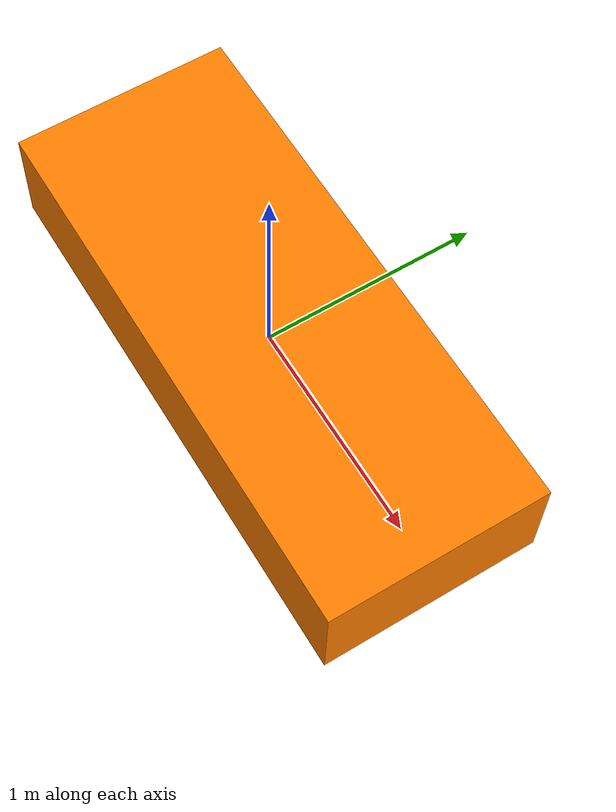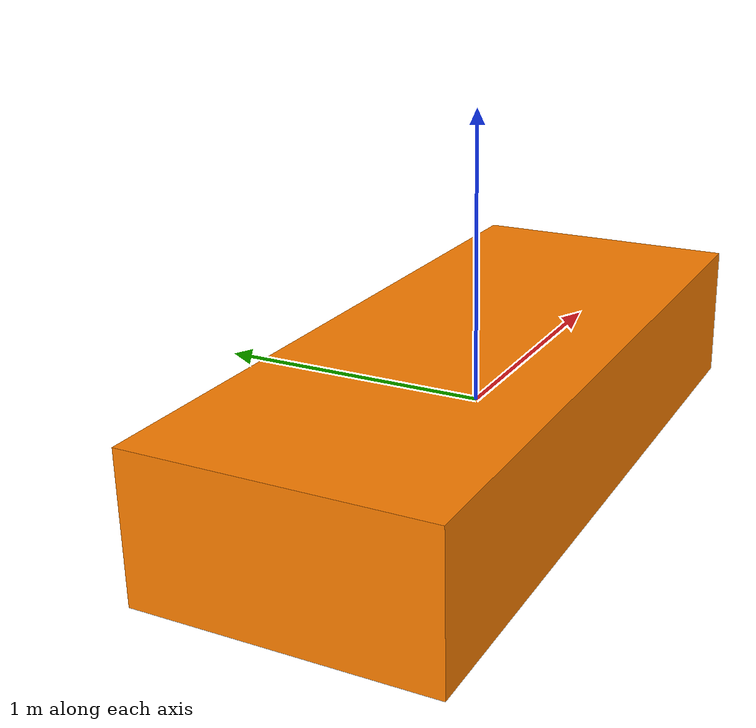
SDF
<?xml version="1.0" ?>
<sdf version="1.6">
  <model name="barrage_buoy">
    <plugin
        filename="gz-waves1-hydrodynamics-system"
        name="gz::sim::systems::Hydrodynamics">
    </plugin>
    <link name="base_link">
      <visual name="visual">
        <geometry>
          <box>
            <size>2.5 1 0.5</size>
          </box>
        </geometry>
        <material>
          <ambient>1.0 0.5 0.0 1.0</ambient>
          <diffuse>1.0 0.5 0.0 1.0</diffuse>
          <specular>0.8 0.8 0.8 1.0</specular>
        </material>
      </visual>
      <collision name="collision">
        <geometry>
          <box>
            <size>2.5 1 0.5</size>
          </box>
        </geometry>
      </collision>
      <inertial>
        <mass>312.5</mass>
        <inertia>
          <ixx>32.5</ixx>
          <ixy>0.0</ixy>
          <ixz>0.0</ixz>
          <iyy>169.3</iyy>
          <iyz>0.0</iyz>
          <izz>188.8</izz>
        </inertia>
      </inertial>
    </link>
  </model>
</sdf>
